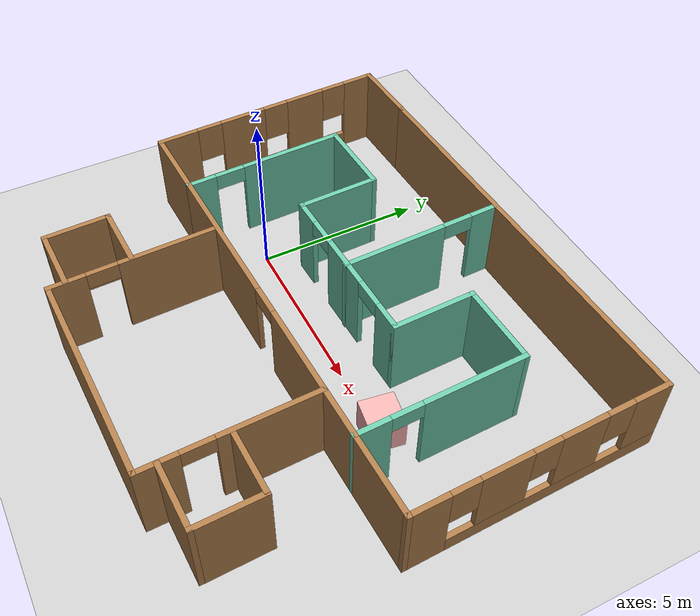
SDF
<sdf version="1.7">
 <world name="default">
  <light name="sun" type="directional">
   <pose>0 0 10 0 -0 0</pose>
   <diffuse>0.8 0.8 0.8 1</diffuse>
   <specular>0.2 0.2 0.2 1</specular>
   <attenuation>
    <range>1000</range>
    <constant>0.9</constant>
    <linear>0.01</linear>
    <quadratic>0.001</quadratic>
   </attenuation>
   <direction>-0.5 0.1 -0.9</direction>
   <spot><inner_angle>0</inner_angle><outer_angle>0</outer_angle><falloff>0</falloff></spot>
  </light>
  <model name="ground_plane">
   <static>1</static>
   <link name="link">
    <collision name="collision">
     <geometry><plane><normal>0 0 1</normal><size>100 100</size></plane></geometry>
     <surface>
      <contact><collide_bitmask>65535</collide_bitmask></contact>
      <friction><ode><mu>100</mu><mu2>50</mu2></ode></friction>
     </surface>
    </collision>
    <visual name="visual">
     <cast_shadows>0</cast_shadows>
     <geometry><plane><normal>0 0 1</normal><size>100 100</size></plane></geometry>
     <material>
      <script><uri>file://media/materials/scripts/gazebo.material</uri><name>Gazebo/Grey</name></script>
     </material>
    </visual>
   </link>
  </model>
  <gravity>0 0 -9.8</gravity>
  <magnetic_field>6e-06 2.3e-05 -4.2e-05</magnetic_field>
  <atmosphere type="adiabatic"/>
  <physics type="ode">
   <max_step_size>0.001</max_step_size>
   <real_time_factor>1</real_time_factor>
   <real_time_update_rate>1000</real_time_update_rate>
  </physics>
  <scene><ambient>0.4 0.4 0.4 1</ambient><background>0.7 0.7 0.7 1</background><shadows>1</shadows></scene>
  <spherical_coordinates>
   <surface_model>EARTH_WGS84</surface_model>
   <latitude_deg>0</latitude_deg>
   <longitude_deg>0</longitude_deg>
   <elevation>0</elevation>
   <heading_deg>0</heading_deg>
  </spherical_coordinates>
  <model name="building2">
   <pose>3.41287 -0.264081 0 0 0 -3.11426</pose>
   <link name="Wall_1">
    <pose>-4.875 -1.17504 0 0 -0 1.5708</pose>
    <visual name="Wall_1_Visual_0">
     <pose>-0.975349 0 1.25 0 -0 0</pose>
     <geometry><box><size>3.0493 0.15 2.5</size></box></geometry>
     <material>
      <script><uri>file://media/materials/scripts/gazebo.material</uri><name>Gazebo/Grey</name></script>
      <ambient>0.435294 0.796078 0.67451 1</ambient>
     </material>
     <meta><layer>0</layer></meta>
    </visual>
    <collision name="Wall_1_Collision_0">
     <geometry><box><size>3.0493 0.15 2.5</size></box></geometry>
     <pose>-0.975349 0 1.25 0 -0 0</pose>
    </collision>
    <visual name="Wall_1_Visual_1">
     <pose>1.97465 0 1.25 0 -0 0</pose>
     <geometry><box><size>1.0507 0.15 2.5</size></box></geometry>
     <material>
      <script><uri>file://media/materials/scripts/gazebo.material</uri><name>Gazebo/Grey</name></script>
      <ambient>0.435294 0.796078 0.67451 1</ambient>
     </material>
     <meta><layer>0</layer></meta>
    </visual>
    <collision name="Wall_1_Collision_1">
     <geometry><box><size>1.0507 0.15 2.5</size></box></geometry>
     <pose>1.97465 0 1.25 0 -0 0</pose>
    </collision>
    <visual name="Wall_1_Visual_2">
     <pose>0.999301 0 2.25 0 -0 0</pose>
     <geometry><box><size>0.9 0.15 0.5</size></box></geometry>
     <material>
      <script><uri>file://media/materials/scripts/gazebo.material</uri><name>Gazebo/Grey</name></script>
      <ambient>0.435294 0.796078 0.67451 1</ambient>
     </material>
     <meta><layer>0</layer></meta>
    </visual>
    <collision name="Wall_1_Collision_2">
     <geometry><box><size>0.9 0.15 0.5</size></box></geometry>
     <pose>0.999301 0 2.25 0 -0 0</pose>
    </collision>
   </link>
   <link name="Wall_10">
    <pose>0.05 -1.25004 0 0 -0 0</pose>
    <visual name="Wall_10_Visual_0">
     <pose>-2.18114 0 1.25 0 -0 0</pose>
     <geometry><box><size>0.937717 0.15 2.5</size></box></geometry>
     <material>
      <script><uri>file://media/materials/scripts/gazebo.material</uri><name>Gazebo/Grey</name></script>
      <ambient>0.435294 0.796078 0.67451 1</ambient>
     </material>
     <meta><layer>0</layer></meta>
    </visual>
    <collision name="Wall_10_Collision_0">
     <geometry><box><size>0.937717 0.15 2.5</size></box></geometry>
     <pose>-2.18114 0 1.25 0 -0 0</pose>
    </collision>
    <visual name="Wall_10_Visual_1">
     <pose>0.039331 0 1.25 0 -0 0</pose>
     <geometry><box><size>1.70323 0.15 2.5</size></box></geometry>
     <material>
      <script><uri>file://media/materials/scripts/gazebo.material</uri><name>Gazebo/Grey</name></script>
      <ambient>0.435294 0.796078 0.67451 1</ambient>
     </material>
     <meta><layer>0</layer></meta>
    </visual>
    <collision name="Wall_10_Collision_1">
     <geometry><box><size>1.70323 0.15 2.5</size></box></geometry>
     <pose>0.039331 0 1.25 0 -0 0</pose>
    </collision>
    <visual name="Wall_10_Visual_2">
     <pose>2.22047 0 1.25 0 -0 0</pose>
     <geometry><box><size>0.859054 0.15 2.5</size></box></geometry>
     <material>
      <script><uri>file://media/materials/scripts/gazebo.material</uri><name>Gazebo/Grey</name></script>
      <ambient>0.435294 0.796078 0.67451 1</ambient>
     </material>
     <meta><layer>0</layer></meta>
    </visual>
    <collision name="Wall_10_Collision_2">
     <geometry><box><size>0.859054 0.15 2.5</size></box></geometry>
     <pose>2.22047 0 1.25 0 -0 0</pose>
    </collision>
    <visual name="Wall_10_Visual_3">
     <pose>-1.26228 0 2.25 0 -0 0</pose>
     <geometry><box><size>0.9 0.15 0.5</size></box></geometry>
     <material>
      <script><uri>file://media/materials/scripts/gazebo.material</uri><name>Gazebo/Grey</name></script>
      <ambient>0.435294 0.796078 0.67451 1</ambient>
     </material>
     <meta><layer>0</layer></meta>
    </visual>
    <collision name="Wall_10_Collision_3">
     <geometry><box><size>0.9 0.15 0.5</size></box></geometry>
     <pose>-1.26228 0 2.25 0 -0 0</pose>
    </collision>
    <visual name="Wall_10_Visual_4">
     <pose>1.34095 0 2.25 0 -0 0</pose>
     <geometry><box><size>0.9 0.15 0.5</size></box></geometry>
     <material>
      <script><uri>file://media/materials/scripts/gazebo.material</uri><name>Gazebo/Grey</name></script>
      <ambient>0.435294 0.796078 0.67451 1</ambient>
     </material>
     <meta><layer>0</layer></meta>
    </visual>
    <collision name="Wall_10_Collision_4">
     <geometry><box><size>0.9 0.15 0.5</size></box></geometry>
     <pose>1.34095 0 2.25 0 -0 0</pose>
    </collision>
   </link>
   <link name="Wall_12">
    <collision name="Wall_12_Collision">
     <geometry><box><size>2.5 0.15 2.5</size></box></geometry>
     <pose>0 0 1.25 0 -0 0</pose>
    </collision>
    <visual name="Wall_12_Visual">
     <pose>0 0 1.25 0 -0 0</pose>
     <geometry><box><size>2.5 0.15 2.5</size></box></geometry>
     <material>
      <script><uri>file://media/materials/scripts/gazebo.material</uri><name>Gazebo/Wood</name></script>
      <ambient>1 1 1 1</ambient>
     </material>
     <meta><layer>0</layer></meta>
    </visual>
    <pose>-6.05 1.24996 0 0 -0 3.14159</pose>
   </link>
   <link name="Wall_13">
    <pose>-7.225 -2.42504 0 0 -0 -1.5708</pose>
    <visual name="Wall_13_Visual_0">
     <pose>-3.1596 0 1.25 0 -0 0</pose>
     <geometry><box><size>1.18081 0.15 2.5</size></box></geometry>
     <material>
      <script><uri>file://media/materials/scripts/gazebo.material</uri><name>Gazebo/Wood</name></script>
      <ambient>1 1 1 1</ambient>
     </material>
     <meta><layer>0</layer></meta>
    </visual>
    <collision name="Wall_13_Collision_0">
     <geometry><box><size>1.18081 0.15 2.5</size></box></geometry>
     <pose>-3.1596 0 1.25 0 -0 0</pose>
    </collision>
    <visual name="Wall_13_Visual_1">
     <pose>0.590402 0 0.25 0 -0 0</pose>
     <geometry><box><size>6.31919 0.15 0.5</size></box></geometry>
     <material>
      <script><uri>file://media/materials/scripts/gazebo.material</uri><name>Gazebo/Wood</name></script>
      <ambient>1 1 1 1</ambient>
     </material>
     <meta><layer>0</layer></meta>
    </visual>
    <collision name="Wall_13_Collision_1">
     <geometry><box><size>6.31919 0.15 0.5</size></box></geometry>
     <pose>0.590402 0 0.25 0 -0 0</pose>
    </collision>
    <visual name="Wall_13_Visual_2">
     <pose>-1.04347 0 1.5 0 -0 0</pose>
     <geometry><box><size>1.45144 0.15 2</size></box></geometry>
     <material>
      <script><uri>file://media/materials/scripts/gazebo.material</uri><name>Gazebo/Wood</name></script>
      <ambient>1 1 1 1</ambient>
     </material>
     <meta><layer>0</layer></meta>
    </visual>
    <collision name="Wall_13_Collision_2">
     <geometry><box><size>1.45144 0.15 2</size></box></geometry>
     <pose>-1.04347 0 1.5 0 -0 0</pose>
    </collision>
    <visual name="Wall_13_Visual_3">
     <pose>1.1552 0 1.5 0 -0 0</pose>
     <geometry><box><size>1.3459 0.15 2</size></box></geometry>
     <material>
      <script><uri>file://media/materials/scripts/gazebo.material</uri><name>Gazebo/Wood</name></script>
      <ambient>1 1 1 1</ambient>
     </material>
     <meta><layer>0</layer></meta>
    </visual>
    <collision name="Wall_13_Collision_3">
     <geometry><box><size>1.3459 0.15 2</size></box></geometry>
     <pose>1.1552 0 1.5 0 -0 0</pose>
    </collision>
    <visual name="Wall_13_Visual_4">
     <pose>3.18907 0 1.5 0 -0 0</pose>
     <geometry><box><size>1.12185 0.15 2</size></box></geometry>
     <material>
      <script><uri>file://media/materials/scripts/gazebo.material</uri><name>Gazebo/Wood</name></script>
      <ambient>1 1 1 1</ambient>
     </material>
     <meta><layer>0</layer></meta>
    </visual>
    <collision name="Wall_13_Collision_4">
     <geometry><box><size>1.12185 0.15 2</size></box></geometry>
     <pose>3.18907 0 1.5 0 -0 0</pose>
    </collision>
    <visual name="Wall_13_Visual_5">
     <pose>-2.1692 0 1.9 0 -0 0</pose>
     <geometry><box><size>0.8 0.15 1.2</size></box></geometry>
     <material>
      <script><uri>file://media/materials/scripts/gazebo.material</uri><name>Gazebo/Wood</name></script>
      <ambient>1 1 1 1</ambient>
     </material>
     <meta><layer>0</layer></meta>
    </visual>
    <collision name="Wall_13_Collision_5">
     <geometry><box><size>0.8 0.15 1.2</size></box></geometry>
     <pose>-2.1692 0 1.9 0 -0 0</pose>
    </collision>
    <visual name="Wall_13_Visual_6">
     <pose>0.082246 0 1.9 0 -0 0</pose>
     <geometry><box><size>0.8 0.15 1.2</size></box></geometry>
     <material>
      <script><uri>file://media/materials/scripts/gazebo.material</uri><name>Gazebo/Wood</name></script>
      <ambient>1 1 1 1</ambient>
     </material>
     <meta><layer>0</layer></meta>
    </visual>
    <collision name="Wall_13_Collision_6">
     <geometry><box><size>0.8 0.15 1.2</size></box></geometry>
     <pose>0.082246 0 1.9 0 -0 0</pose>
    </collision>
    <visual name="Wall_13_Visual_7">
     <pose>2.22815 0 1.9 0 -0 0</pose>
     <geometry><box><size>0.8 0.15 1.2</size></box></geometry>
     <material>
      <script><uri>file://media/materials/scripts/gazebo.material</uri><name>Gazebo/Wood</name></script>
      <ambient>1 1 1 1</ambient>
     </material>
     <meta><layer>0</layer></meta>
    </visual>
    <collision name="Wall_13_Collision_7">
     <geometry><box><size>0.8 0.15 1.2</size></box></geometry>
     <pose>2.22815 0 1.9 0 -0 0</pose>
    </collision>
   </link>
   <link name="Wall_14">
    <collision name="Wall_14_Collision">
     <geometry><box><size>12.5 0.15 2.5</size></box></geometry>
     <pose>0 0 1.25 0 -0 0</pose>
    </collision>
    <visual name="Wall_14_Visual">
     <pose>0 0 1.25 0 -0 0</pose>
     <geometry><box><size>12.5 0.15 2.5</size></box></geometry>
     <material>
      <script><uri>file://media/materials/scripts/gazebo.material</uri><name>Gazebo/Wood</name></script>
      <ambient>1 1 1 1</ambient>
     </material>
     <meta><layer>0</layer></meta>
    </visual>
    <pose>-1.05 -6.10004 0 0 -0 0</pose>
   </link>
   <link name="Wall_18">
    <pose>-0.026306 -3.64586 0 0 -0 -1.5708</pose>
    <visual name="Wall_18_Visual_0">
     <pose>-0.900973 0 1.25 0 -0 0</pose>
     <geometry><box><size>3.19805 0.15 2.5</size></box></geometry>
     <material>
      <script><uri>file://media/materials/scripts/gazebo.material</uri><name>Gazebo/Grey</name></script>
      <ambient>0.435294 0.796078 0.67451 1</ambient>
     </material>
     <meta><layer>0</layer></meta>
    </visual>
    <collision name="Wall_18_Collision_0">
     <geometry><box><size>3.19805 0.15 2.5</size></box></geometry>
     <pose>-0.900973 0 1.25 0 -0 0</pose>
    </collision>
    <visual name="Wall_18_Visual_1">
     <pose>2.04903 0 1.25 0 -0 0</pose>
     <geometry><box><size>0.901947 0.15 2.5</size></box></geometry>
     <material>
      <script><uri>file://media/materials/scripts/gazebo.material</uri><name>Gazebo/Grey</name></script>
      <ambient>0.435294 0.796078 0.67451 1</ambient>
     </material>
     <meta><layer>0</layer></meta>
    </visual>
    <collision name="Wall_18_Collision_1">
     <geometry><box><size>0.901947 0.15 2.5</size></box></geometry>
     <pose>2.04903 0 1.25 0 -0 0</pose>
    </collision>
    <visual name="Wall_18_Visual_2">
     <pose>1.14805 0 2.25 0 -0 0</pose>
     <geometry><box><size>0.9 0.15 0.5</size></box></geometry>
     <material>
      <script><uri>file://media/materials/scripts/gazebo.material</uri><name>Gazebo/Grey</name></script>
      <ambient>0.435294 0.796078 0.67451 1</ambient>
     </material>
     <meta><layer>0</layer></meta>
    </visual>
    <collision name="Wall_18_Collision_2">
     <geometry><box><size>0.9 0.15 0.5</size></box></geometry>
     <pose>1.14805 0 2.25 0 -0 0</pose>
    </collision>
   </link>
   <link name="Wall_21">
    <collision name="Wall_21_Collision">
     <geometry><box><size>2.25 0.15 2.5</size></box></geometry>
     <pose>0 0 1.25 0 -0 0</pose>
    </collision>
    <visual name="Wall_21_Visual">
     <pose>0 0 1.25 0 -0 0</pose>
     <geometry><box><size>2.25 0.15 2.5</size></box></geometry>
     <material>
      <script><uri>file://media/materials/scripts/gazebo.material</uri><name>Gazebo/Wood</name></script>
      <ambient>1 1 1 1</ambient>
     </material>
     <meta><layer>0</layer></meta>
    </visual>
    <pose>6.175 -6.10004 0 0 -0 0</pose>
   </link>
   <link name="Wall_22">
    <pose>7.225 -2.42504 0 0 -0 1.5708</pose>
    <visual name="Wall_22_Visual_0">
     <pose>-3.22425 0 1.25 0 -0 0</pose>
     <geometry><box><size>1.05149 0.15 2.5</size></box></geometry>
     <material>
      <script><uri>file://media/materials/scripts/gazebo.material</uri><name>Gazebo/Wood</name></script>
      <ambient>1 1 1 1</ambient>
     </material>
     <meta><layer>0</layer></meta>
    </visual>
    <collision name="Wall_22_Collision_0">
     <geometry><box><size>1.05149 0.15 2.5</size></box></geometry>
     <pose>-3.22425 0 1.25 0 -0 0</pose>
    </collision>
    <visual name="Wall_22_Visual_1">
     <pose>0.525746 0 0.25 0 -0 0</pose>
     <geometry><box><size>6.44851 0.15 0.5</size></box></geometry>
     <material>
      <script><uri>file://media/materials/scripts/gazebo.material</uri><name>Gazebo/Wood</name></script>
      <ambient>1 1 1 1</ambient>
     </material>
     <meta><layer>0</layer></meta>
    </visual>
    <collision name="Wall_22_Collision_1">
     <geometry><box><size>6.44851 0.15 0.5</size></box></geometry>
     <pose>0.525746 0 0.25 0 -0 0</pose>
    </collision>
    <visual name="Wall_22_Visual_2">
     <pose>-1.26073 0 1.5 0 -0 0</pose>
     <geometry><box><size>1.27555 0.15 2</size></box></geometry>
     <material>
      <script><uri>file://media/materials/scripts/gazebo.material</uri><name>Gazebo/Wood</name></script>
      <ambient>1 1 1 1</ambient>
     </material>
     <meta><layer>0</layer></meta>
    </visual>
    <collision name="Wall_22_Collision_2">
     <geometry><box><size>1.27555 0.15 2</size></box></geometry>
     <pose>-1.26073 0 1.5 0 -0 0</pose>
    </collision>
    <visual name="Wall_22_Visual_3">
     <pose>0.920349 0 1.5 0 -0 0</pose>
     <geometry><box><size>1.48662 0.15 2</size></box></geometry>
     <material>
      <script><uri>file://media/materials/scripts/gazebo.material</uri><name>Gazebo/Wood</name></script>
      <ambient>1 1 1 1</ambient>
     </material>
     <meta><layer>0</layer></meta>
    </visual>
    <collision name="Wall_22_Collision_3">
     <geometry><box><size>1.48662 0.15 2</size></box></geometry>
     <pose>0.920349 0 1.5 0 -0 0</pose>
    </collision>
    <visual name="Wall_22_Visual_4">
     <pose>3.10683 0 1.5 0 -0 0</pose>
     <geometry><box><size>1.28634 0.15 2</size></box></geometry>
     <material>
      <script><uri>file://media/materials/scripts/gazebo.material</uri><name>Gazebo/Wood</name></script>
      <ambient>1 1 1 1</ambient>
     </material>
     <meta><layer>0</layer></meta>
    </visual>
    <collision name="Wall_22_Collision_4">
     <geometry><box><size>1.28634 0.15 2</size></box></geometry>
     <pose>3.10683 0 1.5 0 -0 0</pose>
    </collision>
    <visual name="Wall_22_Visual_5">
     <pose>-2.29851 0 1.9 0 -0 0</pose>
     <geometry><box><size>0.8 0.15 1.2</size></box></geometry>
     <material>
      <script><uri>file://media/materials/scripts/gazebo.material</uri><name>Gazebo/Wood</name></script>
      <ambient>1 1 1 1</ambient>
     </material>
     <meta><layer>0</layer></meta>
    </visual>
    <collision name="Wall_22_Collision_5">
     <geometry><box><size>0.8 0.15 1.2</size></box></geometry>
     <pose>-2.29851 0 1.9 0 -0 0</pose>
    </collision>
    <visual name="Wall_22_Visual_6">
     <pose>-0.222961 0 1.9 0 -0 0</pose>
     <geometry><box><size>0.8 0.15 1.2</size></box></geometry>
     <material>
      <script><uri>file://media/materials/scripts/gazebo.material</uri><name>Gazebo/Wood</name></script>
      <ambient>1 1 1 1</ambient>
     </material>
     <meta><layer>0</layer></meta>
    </visual>
    <collision name="Wall_22_Collision_6">
     <geometry><box><size>0.8 0.15 1.2</size></box></geometry>
     <pose>-0.222961 0 1.9 0 -0 0</pose>
    </collision>
    <visual name="Wall_22_Visual_7">
     <pose>2.06366 0 1.9 0 -0 0</pose>
     <geometry><box><size>0.8 0.15 1.2</size></box></geometry>
     <material>
      <script><uri>file://media/materials/scripts/gazebo.material</uri><name>Gazebo/Wood</name></script>
      <ambient>1 1 1 1</ambient>
     </material>
     <meta><layer>0</layer></meta>
    </visual>
    <collision name="Wall_22_Collision_7">
     <geometry><box><size>0.8 0.15 1.2</size></box></geometry>
     <pose>2.06366 0 1.9 0 -0 0</pose>
    </collision>
   </link>
   <link name="Wall_23">
    <collision name="Wall_23_Collision">
     <geometry><box><size>2.4 0.15 2.5</size></box></geometry>
     <pose>0 0 1.25 0 -0 0</pose>
    </collision>
    <visual name="Wall_23_Visual">
     <pose>0 0 1.25 0 -0 0</pose>
     <geometry><box><size>2.4 0.15 2.5</size></box></geometry>
     <material>
      <script><uri>file://media/materials/scripts/gazebo.material</uri><name>Gazebo/Wood</name></script>
      <ambient>1 1 1 1</ambient>
     </material>
     <meta><layer>0</layer></meta>
    </visual>
    <pose>6.1 1.24996 0 0 -0 -3.14159</pose>
   </link>
   <link name="Wall_26">
    <pose>-3.3958 3.67504 0 0 -0 1.5708</pose>
    <visual name="Wall_26_Visual_0">
     <pose>-1.04628 0 1.25 0 -0 0</pose>
     <geometry><box><size>2.90745 0.15 2.5</size></box></geometry>
     <material>
      <script><uri>file://media/materials/scripts/gazebo.material</uri><name>Gazebo/Wood</name></script>
      <ambient>1 1 1 1</ambient>
     </material>
     <meta><layer>0</layer></meta>
    </visual>
    <collision name="Wall_26_Collision_0">
     <geometry><box><size>2.90745 0.15 2.5</size></box></geometry>
     <pose>-1.04628 0 1.25 0 -0 0</pose>
    </collision>
    <visual name="Wall_26_Visual_1">
     <pose>1.90372 0 1.25 0 -0 0</pose>
     <geometry><box><size>1.19255 0.15 2.5</size></box></geometry>
     <material>
      <script><uri>file://media/materials/scripts/gazebo.material</uri><name>Gazebo/Wood</name></script>
      <ambient>1 1 1 1</ambient>
     </material>
     <meta><layer>0</layer></meta>
    </visual>
    <collision name="Wall_26_Collision_1">
     <geometry><box><size>1.19255 0.15 2.5</size></box></geometry>
     <pose>1.90372 0 1.25 0 -0 0</pose>
    </collision>
    <visual name="Wall_26_Visual_2">
     <pose>0.857448 0 2.25 0 -0 0</pose>
     <geometry><box><size>0.9 0.15 0.5</size></box></geometry>
     <material>
      <script><uri>file://media/materials/scripts/gazebo.material</uri><name>Gazebo/Wood</name></script>
      <ambient>1 1 1 1</ambient>
     </material>
     <meta><layer>0</layer></meta>
    </visual>
    <collision name="Wall_26_Collision_2">
     <geometry><box><size>0.9 0.15 0.5</size></box></geometry>
     <pose>0.857448 0 2.25 0 -0 0</pose>
    </collision>
   </link>
   <link name="Wall_27">
    <collision name="Wall_27_Collision">
     <geometry><box><size>6.5 0.15 2.5</size></box></geometry>
     <pose>0 0 1.25 0 -0 0</pose>
    </collision>
    <visual name="Wall_27_Visual">
     <pose>0 0 1.25 0 -0 0</pose>
     <geometry><box><size>6.5 0.15 2.5</size></box></geometry>
     <material>
      <script><uri>file://media/materials/scripts/gazebo.material</uri><name>Gazebo/Wood</name></script>
      <ambient>1 1 1 1</ambient>
     </material>
     <meta><layer>0</layer></meta>
    </visual>
    <pose>-0.220795 6.10004 0 0 -0 0</pose>
   </link>
   <link name="Wall_28">
    <pose>2.9542 3.67504 0 0 -0 -1.5708</pose>
    <visual name="Wall_28_Visual_0">
     <pose>-1.94362 0 1.25 0 -0 0</pose>
     <geometry><box><size>1.11275 0.15 2.5</size></box></geometry>
     <material>
      <script><uri>file://media/materials/scripts/gazebo.material</uri><name>Gazebo/Wood</name></script>
      <ambient>1 1 1 1</ambient>
     </material>
     <meta><layer>0</layer></meta>
    </visual>
    <collision name="Wall_28_Collision_0">
     <geometry><box><size>1.11275 0.15 2.5</size></box></geometry>
     <pose>-1.94362 0 1.25 0 -0 0</pose>
    </collision>
    <visual name="Wall_28_Visual_1">
     <pose>1.00638 0 1.25 0 -0 0</pose>
     <geometry><box><size>2.98725 0.15 2.5</size></box></geometry>
     <material>
      <script><uri>file://media/materials/scripts/gazebo.material</uri><name>Gazebo/Wood</name></script>
      <ambient>1 1 1 1</ambient>
     </material>
     <meta><layer>0</layer></meta>
    </visual>
    <collision name="Wall_28_Collision_1">
     <geometry><box><size>2.98725 0.15 2.5</size></box></geometry>
     <pose>1.00638 0 1.25 0 -0 0</pose>
    </collision>
    <visual name="Wall_28_Visual_2">
     <pose>-0.937249 0 2.25 0 -0 0</pose>
     <geometry><box><size>0.9 0.15 0.5</size></box></geometry>
     <material>
      <script><uri>file://media/materials/scripts/gazebo.material</uri><name>Gazebo/Wood</name></script>
      <ambient>1 1 1 1</ambient>
     </material>
     <meta><layer>0</layer></meta>
    </visual>
    <collision name="Wall_28_Collision_2">
     <geometry><box><size>0.9 0.15 0.5</size></box></geometry>
     <pose>-0.937249 0 2.25 0 -0 0</pose>
    </collision>
   </link>
   <link name="Wall_3">
    <pose>0.05 1.24996 0 0 -0 0</pose>
    <visual name="Wall_3_Visual_0">
     <pose>-2.81701 0 1.25 0 -0 0</pose>
     <geometry><box><size>4.36598 0.15 2.5</size></box></geometry>
     <material>
      <script><uri>file://media/materials/scripts/gazebo.material</uri><name>Gazebo/Wood</name></script>
      <ambient>1 1 1 1</ambient>
     </material>
     <meta><layer>0</layer></meta>
    </visual>
    <collision name="Wall_3_Collision_0">
     <geometry><box><size>4.36598 0.15 2.5</size></box></geometry>
     <pose>-2.81701 0 1.25 0 -0 0</pose>
    </collision>
    <visual name="Wall_3_Visual_1">
     <pose>2.63299 0 1.25 0 -0 0</pose>
     <geometry><box><size>4.73402 0.15 2.5</size></box></geometry>
     <material>
      <script><uri>file://media/materials/scripts/gazebo.material</uri><name>Gazebo/Wood</name></script>
      <ambient>1 1 1 1</ambient>
     </material>
     <meta><layer>0</layer></meta>
    </visual>
    <collision name="Wall_3_Collision_1">
     <geometry><box><size>4.73402 0.15 2.5</size></box></geometry>
     <pose>2.63299 0 1.25 0 -0 0</pose>
    </collision>
    <visual name="Wall_3_Visual_2">
     <pose>-0.184023 0 2.25 0 -0 0</pose>
     <geometry><box><size>0.9 0.15 0.5</size></box></geometry>
     <material>
      <script><uri>file://media/materials/scripts/gazebo.material</uri><name>Gazebo/Wood</name></script>
      <ambient>1 1 1 1</ambient>
     </material>
     <meta><layer>0</layer></meta>
    </visual>
    <collision name="Wall_3_Collision_2">
     <geometry><box><size>0.9 0.15 0.5</size></box></geometry>
     <pose>-0.184023 0 2.25 0 -0 0</pose>
    </collision>
   </link>
   <link name="Wall_32">
    <collision name="Wall_32_Collision">
     <geometry><box><size>2 0.15 2.5</size></box></geometry>
     <pose>0 0 1.25 0 -0 0</pose>
    </collision>
    <visual name="Wall_32_Visual">
     <pose>0 0 1.25 0 -0 0</pose>
     <geometry><box><size>2 0.15 2.5</size></box></geometry>
     <material>
      <script><uri>file://media/materials/scripts/gazebo.material</uri><name>Gazebo/Wood</name></script>
      <ambient>1 1 1 1</ambient>
     </material>
     <meta><layer>0</layer></meta>
    </visual>
    <pose>-4.34814 5.51854 0 0 -0 3.14159</pose>
   </link>
   <link name="Wall_33">
    <collision name="Wall_33_Collision">
     <geometry><box><size>2 0.15 2.5</size></box></geometry>
     <pose>0 0 1.25 0 -0 0</pose>
    </collision>
    <visual name="Wall_33_Visual">
     <pose>0 0 1.25 0 -0 0</pose>
     <geometry><box><size>2 0.15 2.5</size></box></geometry>
     <material>
      <script><uri>file://media/materials/scripts/gazebo.material</uri><name>Gazebo/Wood</name></script>
      <ambient>1 1 1 1</ambient>
     </material>
     <meta><layer>0</layer></meta>
    </visual>
    <pose>-5.27314 4.59354 0 0 -0 -1.5708</pose>
   </link>
   <link name="Wall_34">
    <collision name="Wall_34_Collision">
     <geometry><box><size>2 0.15 2.5</size></box></geometry>
     <pose>0 0 1.25 0 -0 0</pose>
    </collision>
    <visual name="Wall_34_Visual">
     <pose>0 0 1.25 0 -0 0</pose>
     <geometry><box><size>2 0.15 2.5</size></box></geometry>
     <material>
      <script><uri>file://media/materials/scripts/gazebo.material</uri><name>Gazebo/Wood</name></script>
      <ambient>1 1 1 1</ambient>
     </material>
     <meta><layer>0</layer></meta>
    </visual>
    <pose>-4.34814 3.66854 0 0 -0 0</pose>
   </link>
   <link name="Wall_4">
    <pose>4.975 -1.17504 0 0 -0 -1.5708</pose>
    <visual name="Wall_4_Visual_0">
     <pose>-2.04115 0 1.25 0 -0 0</pose>
     <geometry><box><size>0.917698 0.15 2.5</size></box></geometry>
     <material>
      <script><uri>file://media/materials/scripts/gazebo.material</uri><name>Gazebo/Grey</name></script>
      <ambient>0.435294 0.796078 0.67451 1</ambient>
     </material>
     <meta><layer>0</layer></meta>
    </visual>
    <collision name="Wall_4_Collision_0">
     <geometry><box><size>0.917698 0.15 2.5</size></box></geometry>
     <pose>-2.04115 0 1.25 0 -0 0</pose>
    </collision>
    <visual name="Wall_4_Visual_1">
     <pose>0.908849 0 1.25 0 -0 0</pose>
     <geometry><box><size>3.1823 0.15 2.5</size></box></geometry>
     <material>
      <script><uri>file://media/materials/scripts/gazebo.material</uri><name>Gazebo/Grey</name></script>
      <ambient>0.435294 0.796078 0.67451 1</ambient>
     </material>
     <meta><layer>0</layer></meta>
    </visual>
    <collision name="Wall_4_Collision_1">
     <geometry><box><size>3.1823 0.15 2.5</size></box></geometry>
     <pose>0.908849 0 1.25 0 -0 0</pose>
    </collision>
    <visual name="Wall_4_Visual_2">
     <pose>-1.1323 0 2.25 0 -0 0</pose>
     <geometry><box><size>0.9 0.15 0.5</size></box></geometry>
     <material>
      <script><uri>file://media/materials/scripts/gazebo.material</uri><name>Gazebo/Grey</name></script>
      <ambient>0.435294 0.796078 0.67451 1</ambient>
     </material>
     <meta><layer>0</layer></meta>
    </visual>
    <collision name="Wall_4_Collision_2">
     <geometry><box><size>0.9 0.15 0.5</size></box></geometry>
     <pose>-1.1323 0 2.25 0 -0 0</pose>
    </collision>
   </link>
   <link name="Wall_44">
    <collision name="Wall_44_Collision">
     <geometry><box><size>2 0.15 2.5</size></box></geometry>
     <pose>0 0 1.25 0 -0 0</pose>
    </collision>
    <visual name="Wall_44_Visual">
     <pose>0 0 1.25 0 -0 0</pose>
     <geometry><box><size>2 0.15 2.5</size></box></geometry>
     <material>
      <script><uri>file://media/materials/scripts/gazebo.material</uri><name>Gazebo/Wood</name></script>
      <ambient>1 1 1 1</ambient>
     </material>
     <meta><layer>0</layer></meta>
    </visual>
    <pose>3.91809 5.61911 0 0 -0 0</pose>
   </link>
   <link name="Wall_45">
    <collision name="Wall_45_Collision">
     <geometry><box><size>2 0.15 2.5</size></box></geometry>
     <pose>0 0 1.25 0 -0 0</pose>
    </collision>
    <visual name="Wall_45_Visual">
     <pose>0 0 1.25 0 -0 0</pose>
     <geometry><box><size>2 0.15 2.5</size></box></geometry>
     <material>
      <script><uri>file://media/materials/scripts/gazebo.material</uri><name>Gazebo/Wood</name></script>
      <ambient>1 1 1 1</ambient>
     </material>
     <meta><layer>0</layer></meta>
    </visual>
    <pose>4.84309 4.69411 0 0 -0 -1.5708</pose>
   </link>
   <link name="Wall_46">
    <collision name="Wall_46_Collision">
     <geometry><box><size>2 0.15 2.5</size></box></geometry>
     <pose>0 0 1.25 0 -0 0</pose>
    </collision>
    <visual name="Wall_46_Visual">
     <pose>0 0 1.25 0 -0 0</pose>
     <geometry><box><size>2 0.15 2.5</size></box></geometry>
     <material>
      <script><uri>file://media/materials/scripts/gazebo.material</uri><name>Gazebo/Wood</name></script>
      <ambient>1 1 1 1</ambient>
     </material>
     <meta><layer>0</layer></meta>
    </visual>
    <pose>3.91809 3.76911 0 0 -0 3.14159</pose>
   </link>
   <link name="Wall_5">
    <collision name="Wall_5_Collision">
     <geometry><box><size>2.5 0.15 2.5</size></box></geometry>
     <pose>0 0 1.25 0 -0 0</pose>
    </collision>
    <visual name="Wall_5_Visual">
     <pose>0 0 1.25 0 -0 0</pose>
     <geometry><box><size>2.5 0.15 2.5</size></box></geometry>
     <material>
      <script><uri>file://media/materials/scripts/gazebo.material</uri><name>Gazebo/Grey</name></script>
      <ambient>0.435294 0.796078 0.67451 1</ambient>
     </material>
     <meta><layer>0</layer></meta>
    </visual>
    <pose>3.8 -3.60004 0 0 -0 3.14159</pose>
   </link>
   <link name="Wall_6">
    <collision name="Wall_6_Collision">
     <geometry><box><size>2.5 0.15 2.5</size></box></geometry>
     <pose>0 0 1.25 0 -0 0</pose>
    </collision>
    <visual name="Wall_6_Visual">
     <pose>0 0 1.25 0 -0 0</pose>
     <geometry><box><size>2.5 0.15 2.5</size></box></geometry>
     <material>
      <script><uri>file://media/materials/scripts/gazebo.material</uri><name>Gazebo/Grey</name></script>
      <ambient>0.435294 0.796078 0.67451 1</ambient>
     </material>
     <meta><layer>0</layer></meta>
    </visual>
    <pose>2.625 -2.42504 0 0 -0 1.5708</pose>
   </link>
   <link name="Wall_8">
    <collision name="Wall_8_Collision">
     <geometry><box><size>2.5 0.15 2.5</size></box></geometry>
     <pose>0 0 1.25 0 -0 0</pose>
    </collision>
    <visual name="Wall_8_Visual">
     <pose>0 0 1.25 0 -0 0</pose>
     <geometry><box><size>2.5 0.15 2.5</size></box></geometry>
     <material>
      <script><uri>file://media/materials/scripts/gazebo.material</uri><name>Gazebo/Grey</name></script>
      <ambient>0.435294 0.796078 0.67451 1</ambient>
     </material>
     <meta><layer>0</layer></meta>
    </visual>
    <pose>-3.7 -3.60004 0 0 -0 0</pose>
   </link>
   <link name="Wall_9">
    <collision name="Wall_9_Collision">
     <geometry><box><size>2.5 0.15 2.5</size></box></geometry>
     <pose>0 0 1.25 0 -0 0</pose>
    </collision>
    <visual name="Wall_9_Visual">
     <pose>0 0 1.25 0 -0 0</pose>
     <geometry><box><size>2.5 0.15 2.5</size></box></geometry>
     <material>
      <script><uri>file://media/materials/scripts/gazebo.material</uri><name>Gazebo/Grey</name></script>
      <ambient>0.435294 0.796078 0.67451 1</ambient>
     </material>
     <meta><layer>0</layer></meta>
    </visual>
    <pose>-2.525 -2.42504 0 0 -0 1.5708</pose>
   </link>
   <static>1</static>
  </model>
  <model name="red_unit_box">
   <link name="link">
    <inertial>
     <mass>1</mass>
     <inertia>
      <ixx>0.166667</ixx>
      <ixy>0</ixy>
      <ixz>0</ixz>
      <iyy>0.166667</iyy>
      <iyz>0</iyz>
      <izz>0.166667</izz>
     </inertia>
    </inertial>
    <visual name="visual">
     <geometry><box><size>1 1 1</size></box></geometry>
     <material>
      <script><name>Gazebo/Grey</name><uri>file://media/materials/scripts/gazebo.material</uri></script>
      <shader type="pixel"><normal_map>__default__</normal_map></shader>
      <ambient>1 0 0 0</ambient>
      <diffuse>1 0.7 0.7 1</diffuse>
      <specular>1 0.01 0.01 1</specular>
      <emissive>0 0 0 1</emissive>
     </material>
    </visual>
    <collision name="collision">
     <geometry><box><size>1 1 1</size></box></geometry>
     <surface>
      <friction>
       <ode><mu>1</mu><mu2>1</mu2><fdir1>0 0 0</fdir1><slip1>0</slip1><slip2>0</slip2></ode>
       <torsional>
        <coefficient>1</coefficient>
        <patch_radius>0</patch_radius>
        <surface_radius>0</surface_radius>
        <use_patch_radius>1</use_patch_radius>
        <ode><slip>0</slip></ode>
       </torsional>
      </friction>
      <bounce><restitution_coefficient>0</restitution_coefficient><threshold>1e+06</threshold></bounce>
      <contact>
       <collide_without_contact>0</collide_without_contact>
       <collide_without_contact_bitmask>1</collide_without_contact_bitmask>
       <collide_bitmask>1</collide_bitmask>
       <ode>
        <soft_cfm>0</soft_cfm>
        <soft_erp>0.2</soft_erp>
        <kp>1e+13</kp>
        <kd>1</kd>
        <max_vel>0.01</max_vel>
        <min_depth>0</min_depth>
       </ode>
       <bullet>
        <split_impulse>1</split_impulse>
        <split_impulse_penetration_threshold>-0.01</split_impulse_penetration_threshold>
        <soft_cfm>0</soft_cfm>
        <soft_erp>0.2</soft_erp>
        <kp>1e+13</kp>
        <kd>1</kd>
       </bullet>
      </contact>
     </surface>
    </collision>
   </link>
   <static>0</static>
   <pose>7.14902 0.048762 0.499995 1e-05 -0 -0.148616</pose>
  </model>
 </world>
</sdf>
